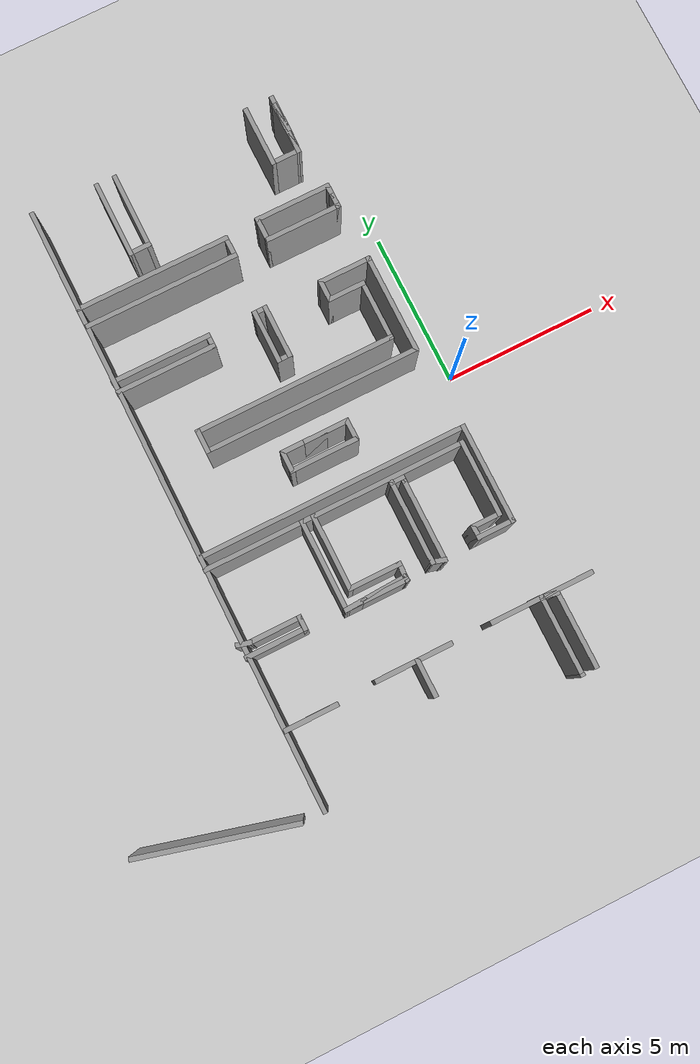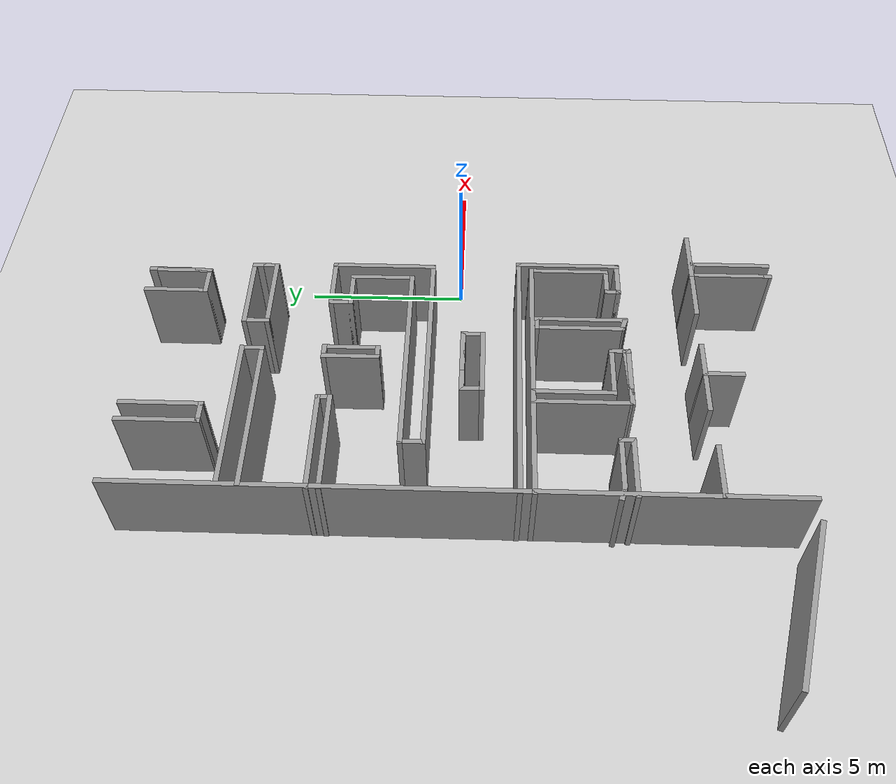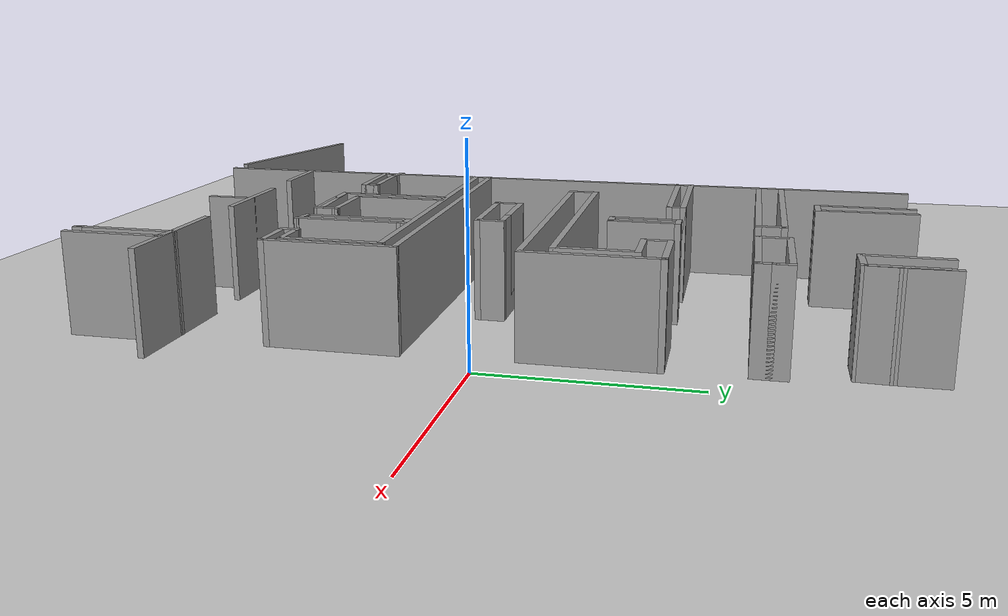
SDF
<sdf version="1.6">
 <world name="default">
  <model name="ground_plane">
   <static>1</static>
   <link name="link">
    <collision name="collision">
     <geometry><plane><normal>0 0 1</normal><size>100 100</size></plane></geometry>
     <surface>
      <contact><collide_bitmask>65535</collide_bitmask></contact>
      <friction><ode><mu>100</mu><mu2>50</mu2></ode></friction>
     </surface>
    </collision>
    <visual name="visual">
     <cast_shadows>0</cast_shadows>
     <geometry><plane><normal>0 0 1</normal><size>100 100</size></plane></geometry>
     <material>
      <script><uri>file://media/materials/scripts/gazebo.material</uri><name>Gazebo/Grey</name></script>
     </material>
    </visual>
   </link>
  </model>
  <model name="maze3">
   <pose>-2.12567 -0.040399 0 0 -0 0</pose>
   <link name="Wall_100">
    <collision name="Wall_100_Collision">
     <geometry><box><size>6.5 0.15 2.5</size></box></geometry>
     <pose>0 0 1.25 0 -0 0</pose>
    </collision>
    <visual name="Wall_100_Visual">
     <pose>0 0 1.25 0 -0 0</pose>
     <geometry><box><size>6.5 0.15 2.5</size></box></geometry>
     <material>
      <script><uri>file://media/materials/scripts/gazebo.material</uri><name>Gazebo/Grey</name></script>
      <ambient>1 1 1 1</ambient>
     </material>
     <meta><layer>0</layer></meta>
    </visual>
    <pose>-2.484 1.54922 0 0 -0 3.14159</pose>
   </link>
   <link name="Wall_101">
    <collision name="Wall_101_Collision">
     <geometry><box><size>0.8 0.15 2.5</size></box></geometry>
     <pose>0 0 1.25 0 -0 0</pose>
    </collision>
    <visual name="Wall_101_Visual">
     <pose>0 0 1.25 0 -0 0</pose>
     <geometry><box><size>0.8 0.15 2.5</size></box></geometry>
     <material>
      <script><uri>file://media/materials/scripts/gazebo.material</uri><name>Gazebo/Grey</name></script>
      <ambient>1 1 1 1</ambient>
     </material>
     <meta><layer>0</layer></meta>
    </visual>
    <pose>-5.659 1.22422 0 0 -0 -1.5708</pose>
   </link>
   <link name="Wall_103">
    <collision name="Wall_103_Collision">
     <geometry><box><size>3.25 0.15 2.5</size></box></geometry>
     <pose>0 0 1.25 0 -0 0</pose>
    </collision>
    <visual name="Wall_103_Visual">
     <pose>0 0 1.25 0 -0 0</pose>
     <geometry><box><size>3.25 0.15 2.5</size></box></geometry>
     <material>
      <script><uri>file://media/materials/scripts/gazebo.material</uri><name>Gazebo/Grey</name></script>
      <ambient>1 1 1 1</ambient>
     </material>
     <meta><layer>0</layer></meta>
    </visual>
    <pose>-5.69081 4.01632 0 0 -0 0</pose>
   </link>
   <link name="Wall_104">
    <collision name="Wall_104_Collision">
     <geometry><box><size>0.5 0.15 2.5</size></box></geometry>
     <pose>0 0 1.25 0 -0 0</pose>
    </collision>
    <visual name="Wall_104_Visual">
     <pose>0 0 1.25 0 -0 0</pose>
     <geometry><box><size>0.5 0.15 2.5</size></box></geometry>
     <material>
      <script><uri>file://media/materials/scripts/gazebo.material</uri><name>Gazebo/Grey</name></script>
      <ambient>1 1 1 1</ambient>
     </material>
     <meta><layer>0</layer></meta>
    </visual>
    <pose>-4.14081 3.84132 0 0 -0 -1.5708</pose>
   </link>
   <link name="Wall_105">
    <collision name="Wall_105_Collision">
     <geometry><box><size>3.25 0.15 2.5</size></box></geometry>
     <pose>0 0 1.25 0 -0 0</pose>
    </collision>
    <visual name="Wall_105_Visual">
     <pose>0 0 1.25 0 -0 0</pose>
     <geometry><box><size>3.25 0.15 2.5</size></box></geometry>
     <material>
      <script><uri>file://media/materials/scripts/gazebo.material</uri><name>Gazebo/Grey</name></script>
      <ambient>1 1 1 1</ambient>
     </material>
     <meta><layer>0</layer></meta>
    </visual>
    <pose>-5.69081 3.66632 0 0 -0 3.14159</pose>
   </link>
   <link name="Wall_107">
    <collision name="Wall_107_Collision">
     <geometry><box><size>1.75 0.15 2.5</size></box></geometry>
     <pose>0 0 1.25 0 -0 0</pose>
    </collision>
    <visual name="Wall_107_Visual">
     <pose>0 0 1.25 0 -0 0</pose>
     <geometry><box><size>1.75 0.15 2.5</size></box></geometry>
     <material>
      <script><uri>file://media/materials/scripts/gazebo.material</uri><name>Gazebo/Grey</name></script>
      <ambient>1 1 1 1</ambient>
     </material>
     <meta><layer>0</layer></meta>
    </visual>
    <pose>-2.58842 3.21632 0 0 -0 -1.5708</pose>
   </link>
   <link name="Wall_108">
    <collision name="Wall_108_Collision">
     <geometry><box><size>0.5 0.15 2.5</size></box></geometry>
     <pose>0 0 1.25 0 -0 0</pose>
    </collision>
    <visual name="Wall_108_Visual">
     <pose>0 0 1.25 0 -0 0</pose>
     <geometry><box><size>0.5 0.15 2.5</size></box></geometry>
     <material>
      <script><uri>file://media/materials/scripts/gazebo.material</uri><name>Gazebo/Grey</name></script>
      <ambient>1 1 1 1</ambient>
     </material>
     <meta><layer>0</layer></meta>
    </visual>
    <pose>-2.41342 2.41632 0 0 -0 0</pose>
   </link>
   <link name="Wall_109">
    <collision name="Wall_109_Collision">
     <geometry><box><size>1.75 0.15 2.5</size></box></geometry>
     <pose>0 0 1.25 0 -0 0</pose>
    </collision>
    <visual name="Wall_109_Visual">
     <pose>0 0 1.25 0 -0 0</pose>
     <geometry><box><size>1.75 0.15 2.5</size></box></geometry>
     <material>
      <script><uri>file://media/materials/scripts/gazebo.material</uri><name>Gazebo/Grey</name></script>
      <ambient>1 1 1 1</ambient>
     </material>
     <meta><layer>0</layer></meta>
    </visual>
    <pose>-2.23842 3.21632 0 0 -0 1.5708</pose>
   </link>
   <link name="Wall_11">
    <collision name="Wall_11_Collision">
     <geometry><box><size>5 0.15 2.5</size></box></geometry>
     <pose>0 0 1.25 0 -0 0</pose>
    </collision>
    <visual name="Wall_11_Visual">
     <pose>0 0 1.25 0 -0 0</pose>
     <geometry><box><size>5 0.15 2.5</size></box></geometry>
     <material>
      <script><uri>file://media/materials/scripts/gazebo.material</uri><name>Gazebo/Grey</name></script>
      <ambient>1 1 1 1</ambient>
     </material>
     <meta><layer>0</layer></meta>
    </visual>
    <pose>-10.3122 -9.22367 0 0 -0 -0.261799</pose>
   </link>
   <link name="Wall_110">
    <collision name="Wall_110_Collision">
     <geometry><box><size>0.5 0.15 2.5</size></box></geometry>
     <pose>0 0 1.25 0 -0 0</pose>
    </collision>
    <visual name="Wall_110_Visual">
     <pose>0 0 1.25 0 -0 0</pose>
     <geometry><box><size>0.5 0.15 2.5</size></box></geometry>
     <material>
      <script><uri>file://media/materials/scripts/gazebo.material</uri><name>Gazebo/Grey</name></script>
      <ambient>1 1 1 1</ambient>
     </material>
     <meta><layer>0</layer></meta>
    </visual>
    <pose>-2.41342 4.01632 0 0 -0 3.14159</pose>
   </link>
   <link name="Wall_112">
    <collision name="Wall_112_Collision">
     <geometry><box><size>5 0.15 2.5</size></box></geometry>
     <pose>0 0 1.25 0 -0 0</pose>
    </collision>
    <visual name="Wall_112_Visual">
     <pose>0 0 1.25 0 -0 0</pose>
     <geometry><box><size>5 0.15 2.5</size></box></geometry>
     <material>
      <script><uri>file://media/materials/scripts/gazebo.material</uri><name>Gazebo/Grey</name></script>
      <ambient>1 1 1 1</ambient>
     </material>
     <meta><layer>0</layer></meta>
    </visual>
    <pose>-4.76928 6.48209 0 0 -0 0</pose>
   </link>
   <link name="Wall_113">
    <collision name="Wall_113_Collision">
     <geometry><box><size>0.75 0.15 2.5</size></box></geometry>
     <pose>0 0 1.25 0 -0 0</pose>
    </collision>
    <visual name="Wall_113_Visual">
     <pose>0 0 1.25 0 -0 0</pose>
     <geometry><box><size>0.75 0.15 2.5</size></box></geometry>
     <material>
      <script><uri>file://media/materials/scripts/gazebo.material</uri><name>Gazebo/Grey</name></script>
      <ambient>1 1 1 1</ambient>
     </material>
     <meta><layer>0</layer></meta>
    </visual>
    <pose>-2.34429 6.18209 0 0 -0 -1.5708</pose>
   </link>
   <link name="Wall_114">
    <collision name="Wall_114_Collision">
     <geometry><box><size>5 0.15 2.5</size></box></geometry>
     <pose>0 0 1.25 0 -0 0</pose>
    </collision>
    <visual name="Wall_114_Visual">
     <pose>0 0 1.25 0 -0 0</pose>
     <geometry><box><size>5 0.15 2.5</size></box></geometry>
     <material>
      <script><uri>file://media/materials/scripts/gazebo.material</uri><name>Gazebo/Grey</name></script>
      <ambient>1 1 1 1</ambient>
     </material>
     <meta><layer>0</layer></meta>
    </visual>
    <pose>-4.76928 5.88209 0 0 -0 3.14159</pose>
   </link>
   <link name="Wall_116">
    <collision name="Wall_116_Collision">
     <geometry><box><size>0.75 0.15 2.5</size></box></geometry>
     <pose>0 0 1.25 0 -0 0</pose>
    </collision>
    <visual name="Wall_116_Visual">
     <pose>0 0 1.25 0 -0 0</pose>
     <geometry><box><size>0.75 0.15 2.5</size></box></geometry>
     <material>
      <script><uri>file://media/materials/scripts/gazebo.material</uri><name>Gazebo/Grey</name></script>
      <ambient>1 1 1 1</ambient>
     </material>
     <meta><layer>0</layer></meta>
    </visual>
    <pose>-1.23922 6.18209 0 0 -0 -1.5708</pose>
   </link>
   <link name="Wall_117">
    <collision name="Wall_117_Collision">
     <geometry><box><size>2.5 0.15 2.5</size></box></geometry>
     <pose>0 0 1.25 0 -0 0</pose>
    </collision>
    <visual name="Wall_117_Visual">
     <pose>0 0 1.25 0 -0 0</pose>
     <geometry><box><size>2.5 0.15 2.5</size></box></geometry>
     <material>
      <script><uri>file://media/materials/scripts/gazebo.material</uri><name>Gazebo/Grey</name></script>
      <ambient>1 1 1 1</ambient>
     </material>
     <meta><layer>0</layer></meta>
    </visual>
    <pose>-0.064224 5.88209 0 0 -0 0</pose>
   </link>
   <link name="Wall_118">
    <collision name="Wall_118_Collision">
     <geometry><box><size>0.5 0.15 2.5</size></box></geometry>
     <pose>0 0 1.25 0 -0 0</pose>
    </collision>
    <visual name="Wall_118_Visual">
     <pose>0 0 1.25 0 -0 0</pose>
     <geometry><box><size>0.5 0.15 2.5</size></box></geometry>
     <material>
      <script><uri>file://media/materials/scripts/gazebo.material</uri><name>Gazebo/Grey</name></script>
      <ambient>1 1 1 1</ambient>
     </material>
     <meta><layer>0</layer></meta>
    </visual>
    <pose>1.11078 6.05709 0 0 -0 1.5708</pose>
   </link>
   <link name="Wall_119">
    <collision name="Wall_119_Collision">
     <geometry><box><size>0.5 0.15 2.5</size></box></geometry>
     <pose>0 0 1.25 0 -0 0</pose>
    </collision>
    <visual name="Wall_119_Visual">
     <pose>0 0 1.25 0 -0 0</pose>
     <geometry><box><size>0.5 0.15 2.5</size></box></geometry>
     <material>
      <script><uri>file://media/materials/scripts/gazebo.material</uri><name>Gazebo/Grey</name></script>
      <ambient>1 1 1 1</ambient>
     </material>
     <meta><layer>0</layer></meta>
    </visual>
    <pose>1.11078 6.40709 0 0 -0 1.5708</pose>
   </link>
   <link name="Wall_120">
    <collision name="Wall_120_Collision">
     <geometry><box><size>2.5 0.15 2.5</size></box></geometry>
     <pose>0 0 1.25 0 -0 0</pose>
    </collision>
    <visual name="Wall_120_Visual">
     <pose>0 0 1.25 0 -0 0</pose>
     <geometry><box><size>2.5 0.15 2.5</size></box></geometry>
     <material>
      <script><uri>file://media/materials/scripts/gazebo.material</uri><name>Gazebo/Grey</name></script>
      <ambient>1 1 1 1</ambient>
     </material>
     <meta><layer>0</layer></meta>
    </visual>
    <pose>-0.064224 6.58209 0 0 -0 3.14159</pose>
   </link>
   <link name="Wall_122">
    <collision name="Wall_122_Collision">
     <geometry><box><size>2 0.15 2.5</size></box></geometry>
     <pose>0 0 1.25 0 -0 0</pose>
    </collision>
    <visual name="Wall_122_Visual">
     <pose>0 0 1.25 0 -0 0</pose>
     <geometry><box><size>2 0.15 2.5</size></box></geometry>
     <material>
      <script><uri>file://media/materials/scripts/gazebo.material</uri><name>Gazebo/Grey</name></script>
      <ambient>1 1 1 1</ambient>
     </material>
     <meta><layer>0</layer></meta>
    </visual>
    <pose>-0.029602 8.90681 0 0 -0 -1.5708</pose>
   </link>
   <link name="Wall_123">
    <collision name="Wall_123_Collision">
     <geometry><box><size>1 0.15 2.5</size></box></geometry>
     <pose>0 0 1.25 0 -0 0</pose>
    </collision>
    <visual name="Wall_123_Visual">
     <pose>0 0 1.25 0 -0 0</pose>
     <geometry><box><size>1 0.15 2.5</size></box></geometry>
     <material>
      <script><uri>file://media/materials/scripts/gazebo.material</uri><name>Gazebo/Grey</name></script>
      <ambient>1 1 1 1</ambient>
     </material>
     <meta><layer>0</layer></meta>
    </visual>
    <pose>0.395398 7.98181 0 0 -0 0</pose>
   </link>
   <link name="Wall_124">
    <collision name="Wall_124_Collision">
     <geometry><box><size>1.75 0.15 2.5</size></box></geometry>
     <pose>0 0 1.25 0 -0 0</pose>
    </collision>
    <visual name="Wall_124_Visual">
     <pose>0 0 1.25 0 -0 0</pose>
     <geometry><box><size>1.75 0.15 2.5</size></box></geometry>
     <material>
      <script><uri>file://media/materials/scripts/gazebo.material</uri><name>Gazebo/Grey</name></script>
      <ambient>1 1 1 1</ambient>
     </material>
     <meta><layer>0</layer></meta>
    </visual>
    <pose>0.820398 8.78181 0 0 -0 1.5708</pose>
   </link>
   <link name="Wall_126">
    <collision name="Wall_126_Collision">
     <geometry><box><size>1.25 0.15 2.5</size></box></geometry>
     <pose>0 0 1.25 0 -0 0</pose>
    </collision>
    <visual name="Wall_126_Visual">
     <pose>0 0 1.25 0 -0 0</pose>
     <geometry><box><size>1.25 0.15 2.5</size></box></geometry>
     <material>
      <script><uri>file://media/materials/scripts/gazebo.material</uri><name>Gazebo/Grey</name></script>
      <ambient>1 1 1 1</ambient>
     </material>
     <meta><layer>0</layer></meta>
    </visual>
    <pose>0.854352 9.28181 0 0 -0 -1.5708</pose>
   </link>
   <link name="Wall_127">
    <collision name="Wall_127_Collision">
     <geometry><box><size>0.900768 0.15 2.5</size></box></geometry>
     <pose>0 0 1.25 0 -0 0</pose>
    </collision>
    <visual name="Wall_127_Visual">
     <pose>0 0 1.25 0 -0 0</pose>
     <geometry><box><size>0.900768 0.15 2.5</size></box></geometry>
     <material>
      <script><uri>file://media/materials/scripts/gazebo.material</uri><name>Gazebo/Grey</name></script>
      <ambient>1 1 1 1</ambient>
     </material>
     <meta><layer>0</layer></meta>
    </visual>
    <pose>0.837375 8.35681 0 0 -0 -1.61604</pose>
   </link>
   <link name="Wall_129">
    <collision name="Wall_129_Collision">
     <geometry><box><size>2.5 0.15 2.5</size></box></geometry>
     <pose>0 0 1.25 0 -0 0</pose>
    </collision>
    <visual name="Wall_129_Visual">
     <pose>0 0 1.25 0 -0 0</pose>
     <geometry><box><size>2.5 0.15 2.5</size></box></geometry>
     <material>
      <script><uri>file://media/materials/scripts/gazebo.material</uri><name>Gazebo/Grey</name></script>
      <ambient>1 1 1 1</ambient>
     </material>
     <meta><layer>0</layer></meta>
    </visual>
    <pose>-5.10071 8.51724 0 0 -0 -1.5708</pose>
   </link>
   <link name="Wall_130">
    <collision name="Wall_130_Collision">
     <geometry><box><size>0.75 0.15 2.5</size></box></geometry>
     <pose>0 0 1.25 0 -0 0</pose>
    </collision>
    <visual name="Wall_130_Visual">
     <pose>0 0 1.25 0 -0 0</pose>
     <geometry><box><size>0.75 0.15 2.5</size></box></geometry>
     <material>
      <script><uri>file://media/materials/scripts/gazebo.material</uri><name>Gazebo/Grey</name></script>
      <ambient>1 1 1 1</ambient>
     </material>
     <meta><layer>0</layer></meta>
    </visual>
    <pose>-4.80071 7.34224 0 0 -0 0</pose>
   </link>
   <link name="Wall_131">
    <collision name="Wall_131_Collision">
     <geometry><box><size>2.5 0.15 2.5</size></box></geometry>
     <pose>0 0 1.25 0 -0 0</pose>
    </collision>
    <visual name="Wall_131_Visual">
     <pose>0 0 1.25 0 -0 0</pose>
     <geometry><box><size>2.5 0.15 2.5</size></box></geometry>
     <material>
      <script><uri>file://media/materials/scripts/gazebo.material</uri><name>Gazebo/Grey</name></script>
      <ambient>1 1 1 1</ambient>
     </material>
     <meta><layer>0</layer></meta>
    </visual>
    <pose>-4.50071 8.51724 0 0 -0 1.5708</pose>
   </link>
   <link name="Wall_15">
    <collision name="Wall_15_Collision">
     <geometry><box><size>19.75 0.15 2.5</size></box></geometry>
     <pose>0 0 1.25 0 -0 0</pose>
    </collision>
    <visual name="Wall_15_Visual">
     <pose>0 0 1.25 0 -0 0</pose>
     <geometry><box><size>19.75 0.15 2.5</size></box></geometry>
     <material>
      <script><uri>file://media/materials/scripts/gazebo.material</uri><name>Gazebo/Grey</name></script>
      <ambient>1 1 1 1</ambient>
     </material>
     <meta><layer>0</layer></meta>
    </visual>
    <pose>-7.21983 -0.051301 0 0 -0 -1.5708</pose>
   </link>
   <link name="Wall_18">
    <collision name="Wall_18_Collision">
     <geometry><box><size>1.75 0.15 2.5</size></box></geometry>
     <pose>0 0 1.25 0 -0 0</pose>
    </collision>
    <visual name="Wall_18_Visual">
     <pose>0 0 1.25 0 -0 0</pose>
     <geometry><box><size>1.75 0.15 2.5</size></box></geometry>
     <material>
      <script><uri>file://media/materials/scripts/gazebo.material</uri><name>Gazebo/Grey</name></script>
      <ambient>1 1 1 1</ambient>
     </material>
     <meta><layer>0</layer></meta>
    </visual>
    <pose>-6.39284 -7.35775 0 0 -0 0</pose>
   </link>
   <link name="Wall_189">
    <collision name="Wall_189_Collision">
     <geometry><box><size>1.5 0.15 2.5</size></box></geometry>
     <pose>0 0 1.25 0 -0 0</pose>
    </collision>
    <visual name="Wall_189_Visual">
     <pose>0 0 1.25 0 -0 0</pose>
     <geometry><box><size>1.5 0.15 2.5</size></box></geometry>
     <material>
      <script><uri>file://media/materials/scripts/gazebo.material</uri><name>Gazebo/Grey</name></script>
      <ambient>1 1 1 1</ambient>
     </material>
     <meta><layer>0</layer></meta>
    </visual>
    <pose>-2.28561 -0.124308 0 0 -0 0</pose>
   </link>
   <link name="Wall_190">
    <collision name="Wall_190_Collision">
     <geometry><box><size>0.75 0.15 2.5</size></box></geometry>
     <pose>0 0 1.25 0 -0 0</pose>
    </collision>
    <visual name="Wall_190_Visual">
     <pose>0 0 1.25 0 -0 0</pose>
     <geometry><box><size>0.75 0.15 2.5</size></box></geometry>
     <material>
      <script><uri>file://media/materials/scripts/gazebo.material</uri><name>Gazebo/Grey</name></script>
      <ambient>1 1 1 1</ambient>
     </material>
     <meta><layer>0</layer></meta>
    </visual>
    <pose>-1.61061 -0.424308 0 0 -0 -1.5708</pose>
   </link>
   <link name="Wall_191">
    <collision name="Wall_191_Collision">
     <geometry><box><size>2.25 0.15 2.5</size></box></geometry>
     <pose>0 0 1.25 0 -0 0</pose>
    </collision>
    <visual name="Wall_191_Visual">
     <pose>0 0 1.25 0 -0 0</pose>
     <geometry><box><size>2.25 0.15 2.5</size></box></geometry>
     <material>
      <script><uri>file://media/materials/scripts/gazebo.material</uri><name>Gazebo/Grey</name></script>
      <ambient>1 1 1 1</ambient>
     </material>
     <meta><layer>0</layer></meta>
    </visual>
    <pose>-2.66061 -0.724308 0 0 -0 3.14159</pose>
   </link>
   <link name="Wall_192">
    <collision name="Wall_192_Collision">
     <geometry><box><size>0.75 0.15 2.5</size></box></geometry>
     <pose>0 0 1.25 0 -0 0</pose>
    </collision>
    <visual name="Wall_192_Visual">
     <pose>0 0 1.25 0 -0 0</pose>
     <geometry><box><size>0.75 0.15 2.5</size></box></geometry>
     <material>
      <script><uri>file://media/materials/scripts/gazebo.material</uri><name>Gazebo/Grey</name></script>
      <ambient>1 1 1 1</ambient>
     </material>
     <meta><layer>0</layer></meta>
    </visual>
    <pose>-3.71061 -0.424308 0 0 -0 1.5708</pose>
   </link>
   <link name="Wall_193">
    <collision name="Wall_193_Collision">
     <geometry><box><size>1.5 0.15 2.5</size></box></geometry>
     <pose>0 0 1.25 0 -0 0</pose>
    </collision>
    <visual name="Wall_193_Visual">
     <pose>0 0 1.25 0 -0 0</pose>
     <geometry><box><size>1.5 0.15 2.5</size></box></geometry>
     <material>
      <script><uri>file://media/materials/scripts/gazebo.material</uri><name>Gazebo/Grey</name></script>
      <ambient>1 1 1 1</ambient>
     </material>
     <meta><layer>0</layer></meta>
    </visual>
    <pose>-3.03561 -0.124308 0 0 -0 0</pose>
   </link>
   <link name="Wall_20">
    <collision name="Wall_20_Collision">
     <geometry><box><size>2.5 0.15 2.5</size></box></geometry>
     <pose>0 0 1.25 0 -0 0</pose>
    </collision>
    <visual name="Wall_20_Visual">
     <pose>0 0 1.25 0 -0 0</pose>
     <geometry><box><size>2.5 0.15 2.5</size></box></geometry>
     <material>
      <script><uri>file://media/materials/scripts/gazebo.material</uri><name>Gazebo/Grey</name></script>
      <ambient>1 1 1 1</ambient>
     </material>
     <meta><layer>0</layer></meta>
    </visual>
    <pose>-3.06458 -7.27684 0 0 -0 0</pose>
   </link>
   <link name="Wall_22">
    <collision name="Wall_22_Collision">
     <geometry><box><size>1.25 0.15 2.5</size></box></geometry>
     <pose>0 0 1.25 0 -0 0</pose>
    </collision>
    <visual name="Wall_22_Visual">
     <pose>0 0 1.25 0 -0 0</pose>
     <geometry><box><size>1.25 0.15 2.5</size></box></geometry>
     <material>
      <script><uri>file://media/materials/scripts/gazebo.material</uri><name>Gazebo/Grey</name></script>
      <ambient>1 1 1 1</ambient>
     </material>
     <meta><layer>0</layer></meta>
    </visual>
    <pose>-2.945 -7.82684 0 0 -0 -1.5708</pose>
   </link>
   <link name="Wall_24">
    <collision name="Wall_24_Collision">
     <geometry><box><size>1.75 0.15 2.5</size></box></geometry>
     <pose>0 0 1.25 0 -0 0</pose>
    </collision>
    <visual name="Wall_24_Visual">
     <pose>0 0 1.25 0 -0 0</pose>
     <geometry><box><size>1.75 0.15 2.5</size></box></geometry>
     <material>
      <script><uri>file://media/materials/scripts/gazebo.material</uri><name>Gazebo/Grey</name></script>
      <ambient>1 1 1 1</ambient>
     </material>
     <meta><layer>0</layer></meta>
    </visual>
    <pose>0.28233 -7.27684 0 0 -0 0</pose>
   </link>
   <link name="Wall_25">
    <collision name="Wall_25_Collision">
     <geometry><box><size>2.5 0.15 2.5</size></box></geometry>
     <pose>0 0 1.25 0 -0 0</pose>
    </collision>
    <visual name="Wall_25_Visual">
     <pose>0 0 1.25 0 -0 0</pose>
     <geometry><box><size>2.5 0.15 2.5</size></box></geometry>
     <material>
      <script><uri>file://media/materials/scripts/gazebo.material</uri><name>Gazebo/Grey</name></script>
      <ambient>1 1 1 1</ambient>
     </material>
     <meta><layer>0</layer></meta>
    </visual>
    <pose>1.08233 -8.45184 0 0 -0 -1.5708</pose>
   </link>
   <link name="Wall_30">
    <collision name="Wall_30_Collision">
     <geometry><box><size>2.5 0.15 2.5</size></box></geometry>
     <pose>0 0 1.25 0 -0 0</pose>
    </collision>
    <visual name="Wall_30_Visual">
     <pose>0 0 1.25 0 -0 0</pose>
     <geometry><box><size>2.5 0.15 2.5</size></box></geometry>
     <material>
      <script><uri>file://media/materials/scripts/gazebo.material</uri><name>Gazebo/Grey</name></script>
      <ambient>1 1 1 1</ambient>
     </material>
     <meta><layer>0</layer></meta>
    </visual>
    <pose>1.54557 -8.52917 0 0 -0 1.5708</pose>
   </link>
   <link name="Wall_31">
    <collision name="Wall_31_Collision">
     <geometry><box><size>0.619645 0.15 2.5</size></box></geometry>
     <pose>0 0 1.25 0 -0 0</pose>
    </collision>
    <visual name="Wall_31_Visual">
     <pose>0 0 1.25 0 -0 0</pose>
     <geometry><box><size>0.619645 0.15 2.5</size></box></geometry>
     <material>
      <script><uri>file://media/materials/scripts/gazebo.material</uri><name>Gazebo/Grey</name></script>
      <ambient>1 1 1 1</ambient>
     </material>
     <meta><layer>0</layer></meta>
    </visual>
    <pose>1.31395 -7.3155 0 0 -0 2.97617</pose>
   </link>
   <link name="Wall_32">
    <collision name="Wall_32_Collision">
     <geometry><box><size>1.75 0.15 2.5</size></box></geometry>
     <pose>0 0 1.25 0 -0 0</pose>
    </collision>
    <visual name="Wall_32_Visual">
     <pose>0 0 1.25 0 -0 0</pose>
     <geometry><box><size>1.75 0.15 2.5</size></box></geometry>
     <material>
      <script><uri>file://media/materials/scripts/gazebo.material</uri><name>Gazebo/Grey</name></script>
      <ambient>1 1 1 1</ambient>
     </material>
     <meta><layer>0</layer></meta>
    </visual>
    <pose>1.88233 -7.27684 0 0 -0 0</pose>
   </link>
   <link name="Wall_34">
    <collision name="Wall_34_Collision">
     <geometry><box><size>0.25 0.15 2.5</size></box></geometry>
     <pose>0 0 1.25 0 -0 0</pose>
    </collision>
    <visual name="Wall_34_Visual">
     <pose>0 0 1.25 0 -0 0</pose>
     <geometry><box><size>0.25 0.15 2.5</size></box></geometry>
     <material>
      <script><uri>file://media/materials/scripts/gazebo.material</uri><name>Gazebo/Grey</name></script>
      <ambient>1 1 1 1</ambient>
     </material>
     <meta><layer>0</layer></meta>
    </visual>
    <pose>1.08233 -9.67684 0 0 -0 -1.5708</pose>
   </link>
   <link name="Wall_51">
    <collision name="Wall_51_Collision">
     <geometry><box><size>8.75 0.15 2.5</size></box></geometry>
     <pose>0 0 1.25 0 -0 0</pose>
    </collision>
    <visual name="Wall_51_Visual">
     <pose>0 0 1.25 0 -0 0</pose>
     <geometry><box><size>8.75 0.15 2.5</size></box></geometry>
     <material>
      <script><uri>file://media/materials/scripts/gazebo.material</uri><name>Gazebo/Grey</name></script>
      <ambient>1 1 1 1</ambient>
     </material>
     <meta><layer>0</layer></meta>
    </visual>
    <pose>-2.9333 -1.81533 0 0 -0 0</pose>
   </link>
   <link name="Wall_52">
    <collision name="Wall_52_Collision">
     <geometry><box><size>3.25 0.15 2.5</size></box></geometry>
     <pose>0 0 1.25 0 -0 0</pose>
    </collision>
    <visual name="Wall_52_Visual">
     <pose>0 0 1.25 0 -0 0</pose>
     <geometry><box><size>3.25 0.15 2.5</size></box></geometry>
     <material>
      <script><uri>file://media/materials/scripts/gazebo.material</uri><name>Gazebo/Grey</name></script>
      <ambient>1 1 1 1</ambient>
     </material>
     <meta><layer>0</layer></meta>
    </visual>
    <pose>1.36671 -3.36533 0 0 -0 -1.5708</pose>
   </link>
   <link name="Wall_53">
    <collision name="Wall_53_Collision">
     <geometry><box><size>1.25 0.15 2.5</size></box></geometry>
     <pose>0 0 1.25 0 -0 0</pose>
    </collision>
    <visual name="Wall_53_Visual">
     <pose>0 0 1.25 0 -0 0</pose>
     <geometry><box><size>1.25 0.15 2.5</size></box></geometry>
     <material>
      <script><uri>file://media/materials/scripts/gazebo.material</uri><name>Gazebo/Grey</name></script>
      <ambient>1 1 1 1</ambient>
     </material>
     <meta><layer>0</layer></meta>
    </visual>
    <pose>0.816705 -4.91533 0 0 -0 3.14159</pose>
   </link>
   <link name="Wall_54">
    <collision name="Wall_54_Collision">
     <geometry><box><size>0.5 0.15 2.5</size></box></geometry>
     <pose>0 0 1.25 0 -0 0</pose>
    </collision>
    <visual name="Wall_54_Visual">
     <pose>0 0 1.25 0 -0 0</pose>
     <geometry><box><size>0.5 0.15 2.5</size></box></geometry>
     <material>
      <script><uri>file://media/materials/scripts/gazebo.material</uri><name>Gazebo/Grey</name></script>
      <ambient>1 1 1 1</ambient>
     </material>
     <meta><layer>0</layer></meta>
    </visual>
    <pose>0.266705 -4.74033 0 0 -0 1.5708</pose>
   </link>
   <link name="Wall_55">
    <collision name="Wall_55_Collision">
     <geometry><box><size>1 0.15 2.5</size></box></geometry>
     <pose>0 0 1.25 0 -0 0</pose>
    </collision>
    <visual name="Wall_55_Visual">
     <pose>0 0 1.25 0 -0 0</pose>
     <geometry><box><size>1 0.15 2.5</size></box></geometry>
     <material>
      <script><uri>file://media/materials/scripts/gazebo.material</uri><name>Gazebo/Grey</name></script>
      <ambient>1 1 1 1</ambient>
     </material>
     <meta><layer>0</layer></meta>
    </visual>
    <pose>0.691705 -4.56533 0 0 -0 0</pose>
   </link>
   <link name="Wall_56">
    <collision name="Wall_56_Collision">
     <geometry><box><size>2.5 0.15 2.5</size></box></geometry>
     <pose>0 0 1.25 0 -0 0</pose>
    </collision>
    <visual name="Wall_56_Visual">
     <pose>0 0 1.25 0 -0 0</pose>
     <geometry><box><size>2.5 0.15 2.5</size></box></geometry>
     <material>
      <script><uri>file://media/materials/scripts/gazebo.material</uri><name>Gazebo/Grey</name></script>
      <ambient>1 1 1 1</ambient>
     </material>
     <meta><layer>0</layer></meta>
    </visual>
    <pose>1.11671 -3.39033 0 0 -0 1.5708</pose>
   </link>
   <link name="Wall_57">
    <collision name="Wall_57_Collision">
     <geometry><box><size>8.5 0.15 2.5</size></box></geometry>
     <pose>0 0 1.25 0 -0 0</pose>
    </collision>
    <visual name="Wall_57_Visual">
     <pose>0 0 1.25 0 -0 0</pose>
     <geometry><box><size>8.5 0.15 2.5</size></box></geometry>
     <material>
      <script><uri>file://media/materials/scripts/gazebo.material</uri><name>Gazebo/Grey</name></script>
      <ambient>1 1 1 1</ambient>
     </material>
     <meta><layer>0</layer></meta>
    </visual>
    <pose>-3.0583 -2.21533 0 0 -0 3.14159</pose>
   </link>
   <link name="Wall_59">
    <collision name="Wall_59_Collision">
     <geometry><box><size>2 0.15 2.5</size></box></geometry>
     <pose>0 0 1.25 0 -0 0</pose>
    </collision>
    <visual name="Wall_59_Visual">
     <pose>0 0 1.25 0 -0 0</pose>
     <geometry><box><size>2 0.15 2.5</size></box></geometry>
     <material>
      <script><uri>file://media/materials/scripts/gazebo.material</uri><name>Gazebo/Grey</name></script>
      <ambient>1 1 1 1</ambient>
     </material>
     <meta><layer>0</layer></meta>
    </visual>
    <pose>-6.34875 -5.01132 0 0 -0 0</pose>
   </link>
   <link name="Wall_60">
    <collision name="Wall_60_Collision">
     <geometry><box><size>0.5 0.15 2.5</size></box></geometry>
     <pose>0 0 1.25 0 -0 0</pose>
    </collision>
    <visual name="Wall_60_Visual">
     <pose>0 0 1.25 0 -0 0</pose>
     <geometry><box><size>0.5 0.15 2.5</size></box></geometry>
     <material>
      <script><uri>file://media/materials/scripts/gazebo.material</uri><name>Gazebo/Grey</name></script>
      <ambient>1 1 1 1</ambient>
     </material>
     <meta><layer>0</layer></meta>
    </visual>
    <pose>-5.42375 -4.83632 0 0 -0 1.5708</pose>
   </link>
   <link name="Wall_61">
    <collision name="Wall_61_Collision">
     <geometry><box><size>1.75 0.15 2.5</size></box></geometry>
     <pose>0 0 1.25 0 -0 0</pose>
    </collision>
    <visual name="Wall_61_Visual">
     <pose>0 0 1.25 0 -0 0</pose>
     <geometry><box><size>1.75 0.15 2.5</size></box></geometry>
     <material>
      <script><uri>file://media/materials/scripts/gazebo.material</uri><name>Gazebo/Grey</name></script>
      <ambient>1 1 1 1</ambient>
     </material>
     <meta><layer>0</layer></meta>
    </visual>
    <pose>-6.22375 -4.66132 0 0 -0 3.14159</pose>
   </link>
   <link name="Wall_62">
    <collision name="Wall_62_Collision">
     <geometry><box><size>0.5 0.15 2.5</size></box></geometry>
     <pose>0 0 1.25 0 -0 0</pose>
    </collision>
    <visual name="Wall_62_Visual">
     <pose>0 0 1.25 0 -0 0</pose>
     <geometry><box><size>0.5 0.15 2.5</size></box></geometry>
     <material>
      <script><uri>file://media/materials/scripts/gazebo.material</uri><name>Gazebo/Grey</name></script>
      <ambient>1 1 1 1</ambient>
     </material>
     <meta><layer>0</layer></meta>
    </visual>
    <pose>-7.19279 -4.61603 0 0 -0 2.87979</pose>
   </link>
   <link name="Wall_64">
    <collision name="Wall_64_Collision">
     <geometry><box><size>3 0.15 2.5</size></box></geometry>
     <pose>0 0 1.25 0 -0 0</pose>
    </collision>
    <visual name="Wall_64_Visual">
     <pose>0 0 1.25 0 -0 0</pose>
     <geometry><box><size>3 0.15 2.5</size></box></geometry>
     <material>
      <script><uri>file://media/materials/scripts/gazebo.material</uri><name>Gazebo/Grey</name></script>
      <ambient>1 1 1 1</ambient>
     </material>
     <meta><layer>0</layer></meta>
    </visual>
    <pose>-4.11822 -3.64489 0 0 -0 -1.5708</pose>
   </link>
   <link name="Wall_65">
    <collision name="Wall_65_Collision">
     <geometry><box><size>0.75 0.15 2.5</size></box></geometry>
     <pose>0 0 1.25 0 -0 0</pose>
    </collision>
    <visual name="Wall_65_Visual">
     <pose>0 0 1.25 0 -0 0</pose>
     <geometry><box><size>0.75 0.15 2.5</size></box></geometry>
     <material>
      <script><uri>file://media/materials/scripts/gazebo.material</uri><name>Gazebo/Grey</name></script>
      <ambient>1 1 1 1</ambient>
     </material>
     <meta><layer>0</layer></meta>
    </visual>
    <pose>-3.81822 -5.06989 0 0 -0 0</pose>
   </link>
   <link name="Wall_66">
    <collision name="Wall_66_Collision">
     <geometry><box><size>1.5 0.15 2.5</size></box></geometry>
     <pose>0 0 1.25 0 -0 0</pose>
    </collision>
    <visual name="Wall_66_Visual">
     <pose>0 0 1.25 0 -0 0</pose>
     <geometry><box><size>1.5 0.15 2.5</size></box></geometry>
     <material>
      <script><uri>file://media/materials/scripts/gazebo.material</uri><name>Gazebo/Grey</name></script>
      <ambient>1 1 1 1</ambient>
     </material>
     <meta><layer>0</layer></meta>
    </visual>
    <pose>-2.84322 -5.06989 0 0 -0 0</pose>
   </link>
   <link name="Wall_67">
    <collision name="Wall_67_Collision">
     <geometry><box><size>0.25 0.15 2.5</size></box></geometry>
     <pose>0 0 1.25 0 -0 0</pose>
    </collision>
    <visual name="Wall_67_Visual">
     <pose>0 0 1.25 0 -0 0</pose>
     <geometry><box><size>0.25 0.15 2.5</size></box></geometry>
     <material>
      <script><uri>file://media/materials/scripts/gazebo.material</uri><name>Gazebo/Grey</name></script>
      <ambient>1 1 1 1</ambient>
     </material>
     <meta><layer>0</layer></meta>
    </visual>
    <pose>-2.18116 -5.02159 0 0 -0 1.8326</pose>
   </link>
   <link name="Wall_68">
    <collision name="Wall_68_Collision">
     <geometry><box><size>2.07654 0.15 2.5</size></box></geometry>
     <pose>0 0 1.25 0 -0 0</pose>
    </collision>
    <visual name="Wall_68_Visual">
     <pose>0 0 1.25 0 -0 0</pose>
     <geometry><box><size>2.07654 0.15 2.5</size></box></geometry>
     <material>
      <script><uri>file://media/materials/scripts/gazebo.material</uri><name>Gazebo/Grey</name></script>
      <ambient>1 1 1 1</ambient>
     </material>
     <meta><layer>0</layer></meta>
    </visual>
    <pose>-3.15616 -5.02159 0 0 -0 -3.09143</pose>
   </link>
   <link name="Wall_70">
    <collision name="Wall_70_Collision">
     <geometry><box><size>2.5 0.15 2.5</size></box></geometry>
     <pose>0 0 1.25 0 -0 0</pose>
    </collision>
    <visual name="Wall_70_Visual">
     <pose>0 0 1.25 0 -0 0</pose>
     <geometry><box><size>2.5 0.15 2.5</size></box></geometry>
     <material>
      <script><uri>file://media/materials/scripts/gazebo.material</uri><name>Gazebo/Grey</name></script>
      <ambient>1 1 1 1</ambient>
     </material>
     <meta><layer>0</layer></meta>
    </visual>
    <pose>-3.75412 -3.39489 0 0 -0 -1.5708</pose>
   </link>
   <link name="Wall_71">
    <collision name="Wall_71_Collision">
     <geometry><box><size>1.75 0.15 2.5</size></box></geometry>
     <pose>0 0 1.25 0 -0 0</pose>
    </collision>
    <visual name="Wall_71_Visual">
     <pose>0 0 1.25 0 -0 0</pose>
     <geometry><box><size>1.75 0.15 2.5</size></box></geometry>
     <material>
      <script><uri>file://media/materials/scripts/gazebo.material</uri><name>Gazebo/Grey</name></script>
      <ambient>1 1 1 1</ambient>
     </material>
     <meta><layer>0</layer></meta>
    </visual>
    <pose>-2.95412 -4.56989 0 0 -0 0</pose>
   </link>
   <link name="Wall_72">
    <collision name="Wall_72_Collision">
     <geometry><box><size>0.650199 0.15 2.5</size></box></geometry>
     <pose>0 0 1.25 0 -0 0</pose>
    </collision>
    <visual name="Wall_72_Visual">
     <pose>0 0 1.25 0 -0 0</pose>
     <geometry><box><size>0.650199 0.15 2.5</size></box></geometry>
     <material>
      <script><uri>file://media/materials/scripts/gazebo.material</uri><name>Gazebo/Grey</name></script>
      <ambient>1 1 1 1</ambient>
     </material>
     <meta><layer>0</layer></meta>
    </visual>
    <pose>-2.16117 -4.81989 0 0 -0 -1.59899</pose>
   </link>
   <link name="Wall_74">
    <collision name="Wall_74_Collision">
     <geometry><box><size>2.75 0.15 2.5</size></box></geometry>
     <pose>0 0 1.25 0 -0 0</pose>
    </collision>
    <visual name="Wall_74_Visual">
     <pose>0 0 1.25 0 -0 0</pose>
     <geometry><box><size>2.75 0.15 2.5</size></box></geometry>
     <material>
      <script><uri>file://media/materials/scripts/gazebo.material</uri><name>Gazebo/Grey</name></script>
      <ambient>1 1 1 1</ambient>
     </material>
     <meta><layer>0</layer></meta>
    </visual>
    <pose>-0.922225 -3.75178 0 0 -0 1.5708</pose>
   </link>
   <link name="Wall_75">
    <collision name="Wall_75_Collision">
     <geometry><box><size>0.25 0.15 2.5</size></box></geometry>
     <pose>0 0 1.25 0 -0 0</pose>
    </collision>
    <visual name="Wall_75_Visual">
     <pose>0 0 1.25 0 -0 0</pose>
     <geometry><box><size>0.25 0.15 2.5</size></box></geometry>
     <material>
      <script><uri>file://media/materials/scripts/gazebo.material</uri><name>Gazebo/Grey</name></script>
      <ambient>1 1 1 1</ambient>
     </material>
     <meta><layer>0</layer></meta>
    </visual>
    <pose>-0.922225 -2.40178 0 0 -0 1.5708</pose>
   </link>
   <link name="Wall_76">
    <collision name="Wall_76_Collision">
     <geometry><box><size>0.5 0.15 2.5</size></box></geometry>
     <pose>0 0 1.25 0 -0 0</pose>
    </collision>
    <visual name="Wall_76_Visual">
     <pose>0 0 1.25 0 -0 0</pose>
     <geometry><box><size>0.5 0.15 2.5</size></box></geometry>
     <material>
      <script><uri>file://media/materials/scripts/gazebo.material</uri><name>Gazebo/Grey</name></script>
      <ambient>1 1 1 1</ambient>
     </material>
     <meta><layer>0</layer></meta>
    </visual>
    <pose>-1.09722 -2.35178 0 0 -0 3.14159</pose>
   </link>
   <link name="Wall_77">
    <collision name="Wall_77_Collision">
     <geometry><box><size>2.75 0.15 2.5</size></box></geometry>
     <pose>0 0 1.25 0 -0 0</pose>
    </collision>
    <visual name="Wall_77_Visual">
     <pose>0 0 1.25 0 -0 0</pose>
     <geometry><box><size>2.75 0.15 2.5</size></box></geometry>
     <material>
      <script><uri>file://media/materials/scripts/gazebo.material</uri><name>Gazebo/Grey</name></script>
      <ambient>1 1 1 1</ambient>
     </material>
     <meta><layer>0</layer></meta>
    </visual>
    <pose>-1.27222 -3.65178 0 0 -0 -1.5708</pose>
   </link>
   <link name="Wall_78">
    <collision name="Wall_78_Collision">
     <geometry><box><size>0.514005 0.15 2.5</size></box></geometry>
     <pose>0 0 1.25 0 -0 0</pose>
    </collision>
    <visual name="Wall_78_Visual">
     <pose>0 0 1.25 0 -0 0</pose>
     <geometry><box><size>0.514005 0.15 2.5</size></box></geometry>
     <material>
      <script><uri>file://media/materials/scripts/gazebo.material</uri><name>Gazebo/Grey</name></script>
      <ambient>1 1 1 1</ambient>
     </material>
     <meta><layer>0</layer></meta>
    </visual>
    <pose>-1.09722 -5.00178 0 0 -0 -0.2783</pose>
   </link>
   <link name="Wall_94">
    <collision name="Wall_94_Collision">
     <geometry><box><size>7 0.15 2.5</size></box></geometry>
     <pose>0 0 1.25 0 -0 0</pose>
    </collision>
    <visual name="Wall_94_Visual">
     <pose>0 0 1.25 0 -0 0</pose>
     <geometry><box><size>7 0.15 2.5</size></box></geometry>
     <material>
      <script><uri>file://media/materials/scripts/gazebo.material</uri><name>Gazebo/Grey</name></script>
      <ambient>1 1 1 1</ambient>
     </material>
     <meta><layer>0</layer></meta>
    </visual>
    <pose>-2.234 0.899218 0 0 -0 0</pose>
   </link>
   <link name="Wall_95">
    <collision name="Wall_95_Collision">
     <geometry><box><size>3.25 0.15 2.5</size></box></geometry>
     <pose>0 0 1.25 0 -0 0</pose>
    </collision>
    <visual name="Wall_95_Visual">
     <pose>0 0 1.25 0 -0 0</pose>
     <geometry><box><size>3.25 0.15 2.5</size></box></geometry>
     <material>
      <script><uri>file://media/materials/scripts/gazebo.material</uri><name>Gazebo/Grey</name></script>
      <ambient>1 1 1 1</ambient>
     </material>
     <meta><layer>0</layer></meta>
    </visual>
    <pose>1.191 2.44922 0 0 -0 1.5708</pose>
   </link>
   <link name="Wall_96">
    <collision name="Wall_96_Collision">
     <geometry><box><size>1.75 0.15 2.5</size></box></geometry>
     <pose>0 0 1.25 0 -0 0</pose>
    </collision>
    <visual name="Wall_96_Visual">
     <pose>0 0 1.25 0 -0 0</pose>
     <geometry><box><size>1.75 0.15 2.5</size></box></geometry>
     <material>
      <script><uri>file://media/materials/scripts/gazebo.material</uri><name>Gazebo/Grey</name></script>
      <ambient>1 1 1 1</ambient>
     </material>
     <meta><layer>0</layer></meta>
    </visual>
    <pose>0.391004 3.99922 0 0 -0 3.14159</pose>
   </link>
   <link name="Wall_97">
    <collision name="Wall_97_Collision">
     <geometry><box><size>0.75 0.15 2.5</size></box></geometry>
     <pose>0 0 1.25 0 -0 0</pose>
    </collision>
    <visual name="Wall_97_Visual">
     <pose>0 0 1.25 0 -0 0</pose>
     <geometry><box><size>0.75 0.15 2.5</size></box></geometry>
     <material>
      <script><uri>file://media/materials/scripts/gazebo.material</uri><name>Gazebo/Grey</name></script>
      <ambient>1 1 1 1</ambient>
     </material>
     <meta><layer>0</layer></meta>
    </visual>
    <pose>-0.408996 3.69922 0 0 -0 -1.5708</pose>
   </link>
   <link name="Wall_98">
    <collision name="Wall_98_Collision">
     <geometry><box><size>1.25 0.15 2.5</size></box></geometry>
     <pose>0 0 1.25 0 -0 0</pose>
    </collision>
    <visual name="Wall_98_Visual">
     <pose>0 0 1.25 0 -0 0</pose>
     <geometry><box><size>1.25 0.15 2.5</size></box></geometry>
     <material>
      <script><uri>file://media/materials/scripts/gazebo.material</uri><name>Gazebo/Grey</name></script>
      <ambient>1 1 1 1</ambient>
     </material>
     <meta><layer>0</layer></meta>
    </visual>
    <pose>0.141004 3.39922 0 0 -0 0</pose>
   </link>
   <link name="Wall_99">
    <collision name="Wall_99_Collision">
     <geometry><box><size>2 0.15 2.5</size></box></geometry>
     <pose>0 0 1.25 0 -0 0</pose>
    </collision>
    <visual name="Wall_99_Visual">
     <pose>0 0 1.25 0 -0 0</pose>
     <geometry><box><size>2 0.15 2.5</size></box></geometry>
     <material>
      <script><uri>file://media/materials/scripts/gazebo.material</uri><name>Gazebo/Grey</name></script>
      <ambient>1 1 1 1</ambient>
     </material>
     <meta><layer>0</layer></meta>
    </visual>
    <pose>0.691004 2.47422 0 0 -0 -1.5708</pose>
   </link>
   <static>1</static>
  </model>
 </world>
</sdf>
